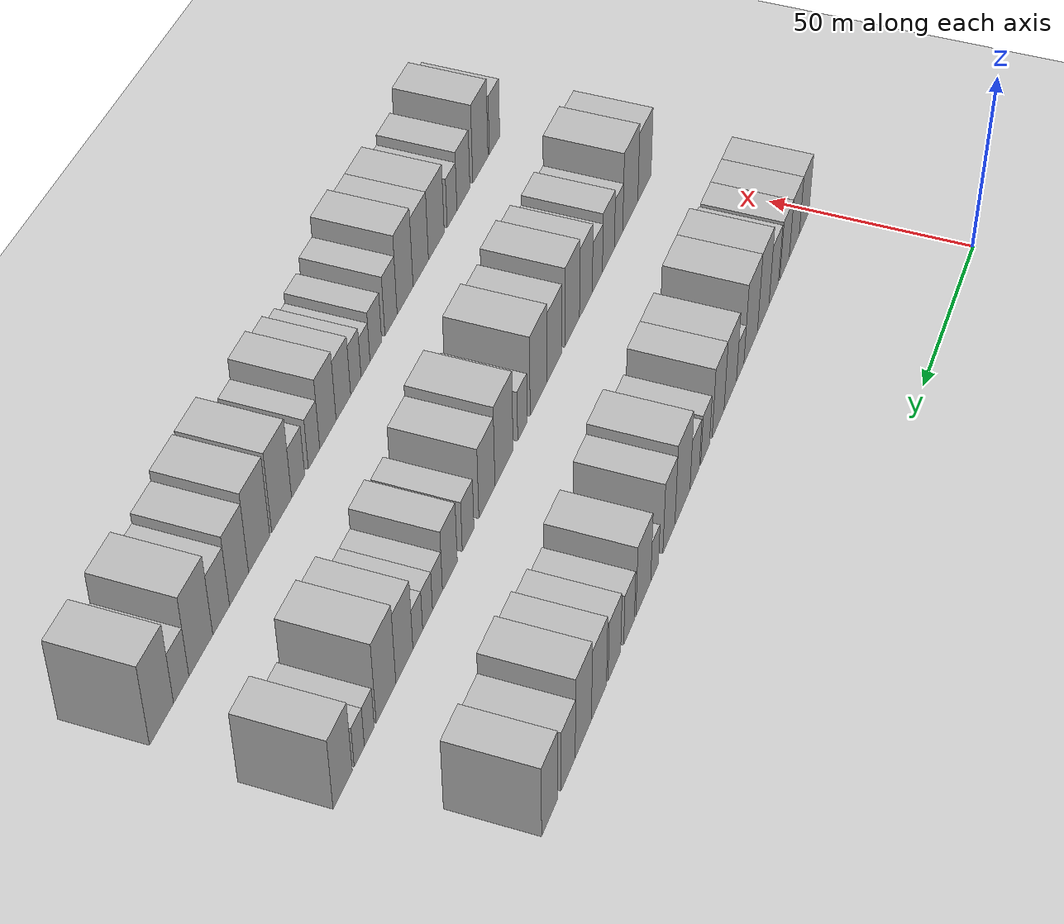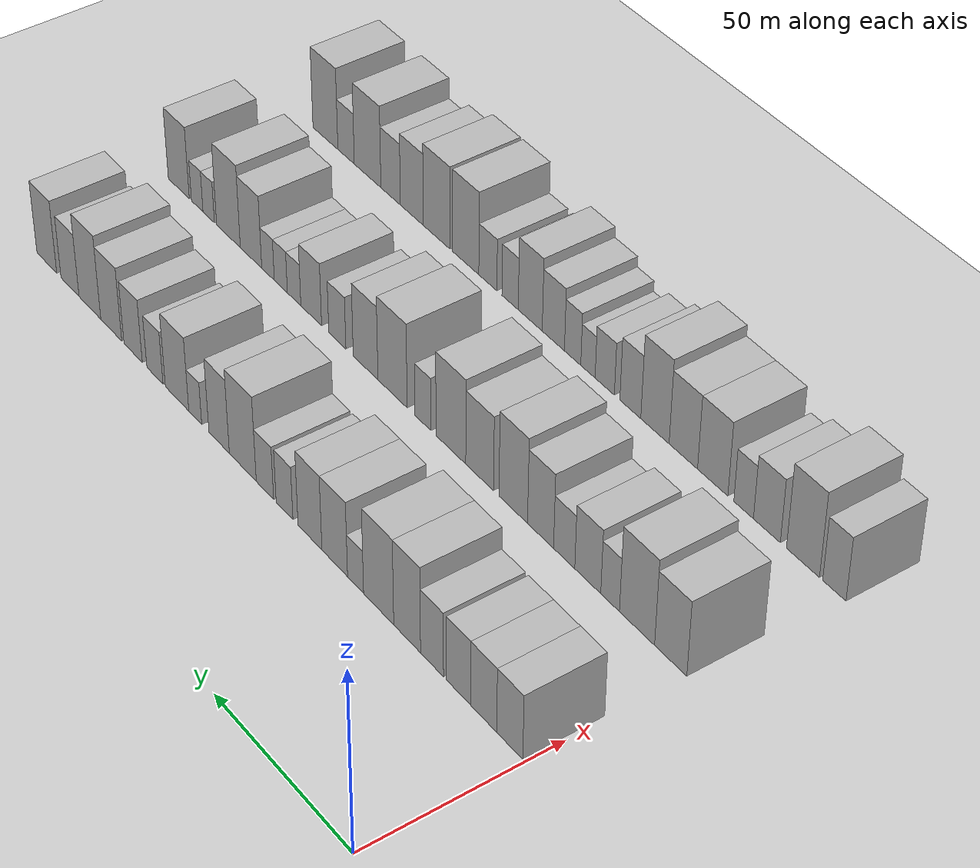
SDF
<sdf version="1.6">
 <world name="default">
  <include>
   <name>ground_plane_2</name>
   <uri>model://HANNAS_ground_plane</uri>
   <pose>100 0 0  0 0 0</pose>
  </include>
  <model name="building_42">
   <static>1</static>
   <pose>50.0000 5.1504 0 0.000000 0.000000 0.000000</pose>
   <link name="link">
    <pose>0 0 9.00 0 0 0</pose>
    <collision name="collision"><geometry><box><size>20.0000 8.7349 18.0000</size></box></geometry></collision>
    <visual name="visual">
     <cast_shadows>0</cast_shadows>
     <geometry><box><size>20.0000 8.7349 18.0000</size></box></geometry>
     <material>
      <script>
       <uri>model://HANNAS_wall/materials/scripts</uri>
       <uri>model://HANNAS_wall/materials/textures</uri>
       <name>vrc/HANNAS_wall</name>
      </script>
     </material>
    </visual>
   </link>
  </model>
  <model name="building_43">
   <static>1</static>
   <pose>50.0000 13.9626 0 0.000000 0.000000 0.000000</pose>
   <link name="link">
    <pose>0 0 9.00 0 0 0</pose>
    <collision name="collision"><geometry><box><size>20.0000 8.8895 18.0000</size></box></geometry></collision>
    <visual name="visual">
     <cast_shadows>0</cast_shadows>
     <geometry><box><size>20.0000 8.8895 18.0000</size></box></geometry>
     <material>
      <script>
       <uri>model://HANNAS_wall/materials/scripts</uri>
       <uri>model://HANNAS_wall/materials/textures</uri>
       <name>vrc/HANNAS_wall</name>
      </script>
     </material>
    </visual>
   </link>
  </model>
  <model name="building_44">
   <static>1</static>
   <pose>50.0000 22.5887 0 0.000000 0.000000 0.000000</pose>
   <link name="link">
    <pose>0 0 9.00 0 0 0</pose>
    <collision name="collision"><geometry><box><size>20.0000 8.3627 18.0000</size></box></geometry></collision>
    <visual name="visual">
     <cast_shadows>0</cast_shadows>
     <geometry><box><size>20.0000 8.3627 18.0000</size></box></geometry>
     <material>
      <script>
       <uri>model://HANNAS_wall/materials/scripts</uri>
       <uri>model://HANNAS_wall/materials/textures</uri>
       <name>vrc/HANNAS_wall</name>
      </script>
     </material>
    </visual>
   </link>
  </model>
  <model name="building_45">
   <static>1</static>
   <pose>50.0000 31.8233 0 0.000000 0.000000 0.000000</pose>
   <link name="link">
    <pose>0 0 9.00 0 0 0</pose>
    <collision name="collision"><geometry><box><size>20.0000 8.1066 18.0000</size></box></geometry></collision>
    <visual name="visual">
     <cast_shadows>0</cast_shadows>
     <geometry><box><size>20.0000 8.1066 18.0000</size></box></geometry>
     <material>
      <script>
       <uri>model://HANNAS_wall/materials/scripts</uri>
       <uri>model://HANNAS_wall/materials/textures</uri>
       <name>vrc/HANNAS_wall</name>
      </script>
     </material>
    </visual>
   </link>
  </model>
  <model name="building_46">
   <static>1</static>
   <pose>50.0000 40.6943 0 0.000000 0.000000 0.000000</pose>
   <link name="link">
    <pose>0 0 12.00 0 0 0</pose>
    <collision name="collision"><geometry><box><size>20.0000 9.6353 24.0000</size></box></geometry></collision>
    <visual name="visual">
     <cast_shadows>0</cast_shadows>
     <geometry><box><size>20.0000 9.6353 24.0000</size></box></geometry>
     <material>
      <script>
       <uri>model://HANNAS_wall/materials/scripts</uri>
       <uri>model://HANNAS_wall/materials/textures</uri>
       <name>vrc/HANNAS_wall</name>
      </script>
     </material>
    </visual>
   </link>
  </model>
  <model name="building_47">
   <static>1</static>
   <pose>50.0000 51.0428 0 0.000000 0.000000 0.000000</pose>
   <link name="link">
    <pose>0 0 12.00 0 0 0</pose>
    <collision name="collision"><geometry><box><size>20.0000 11.0618 24.0000</size></box></geometry></collision>
    <visual name="visual">
     <cast_shadows>0</cast_shadows>
     <geometry><box><size>20.0000 11.0618 24.0000</size></box></geometry>
     <material>
      <script>
       <uri>model://HANNAS_wall/materials/scripts</uri>
       <uri>model://HANNAS_wall/materials/textures</uri>
       <name>vrc/HANNAS_wall</name>
      </script>
     </material>
    </visual>
   </link>
  </model>
  <model name="building_48">
   <static>1</static>
   <pose>50.0000 59.5618 0 0.000000 0.000000 0.000000</pose>
   <link name="link">
    <pose>0 0 6.00 0 0 0</pose>
    <collision name="collision"><geometry><box><size>20.0000 5.9762 12.0000</size></box></geometry></collision>
    <visual name="visual">
     <cast_shadows>0</cast_shadows>
     <geometry><box><size>20.0000 5.9762 12.0000</size></box></geometry>
     <material>
      <script>
       <uri>model://HANNAS_wall/materials/scripts</uri>
       <uri>model://HANNAS_wall/materials/textures</uri>
       <name>vrc/HANNAS_wall</name>
      </script>
     </material>
    </visual>
   </link>
  </model>
  <model name="building_49">
   <static>1</static>
   <pose>50.0000 67.4101 0 0.000000 0.000000 0.000000</pose>
   <link name="link">
    <pose>0 0 10.50 0 0 0</pose>
    <collision name="collision"><geometry><box><size>20.0000 9.7205 21.0000</size></box></geometry></collision>
    <visual name="visual">
     <cast_shadows>0</cast_shadows>
     <geometry><box><size>20.0000 9.7205 21.0000</size></box></geometry>
     <material>
      <script>
       <uri>model://HANNAS_wall/materials/scripts</uri>
       <uri>model://HANNAS_wall/materials/textures</uri>
       <name>vrc/HANNAS_wall</name>
      </script>
     </material>
    </visual>
   </link>
  </model>
  <model name="building_50">
   <static>1</static>
   <pose>50.0000 76.8824 0 0.000000 0.000000 0.000000</pose>
   <link name="link">
    <pose>0 0 10.50 0 0 0</pose>
    <collision name="collision"><geometry><box><size>20.0000 9.2241 21.0000</size></box></geometry></collision>
    <visual name="visual">
     <cast_shadows>0</cast_shadows>
     <geometry><box><size>20.0000 9.2241 21.0000</size></box></geometry>
     <material>
      <script>
       <uri>model://HANNAS_wall/materials/scripts</uri>
       <uri>model://HANNAS_wall/materials/textures</uri>
       <name>vrc/HANNAS_wall</name>
      </script>
     </material>
    </visual>
   </link>
  </model>
  <model name="building_51">
   <static>1</static>
   <pose>50.0000 86.7952 0 0.000000 0.000000 0.000000</pose>
   <link name="link">
    <pose>0 0 7.50 0 0 0</pose>
    <collision name="collision"><geometry><box><size>20.0000 6.6013 15.0000</size></box></geometry></collision>
    <visual name="visual">
     <cast_shadows>0</cast_shadows>
     <geometry><box><size>20.0000 6.6013 15.0000</size></box></geometry>
     <material>
      <script>
       <uri>model://HANNAS_wall/materials/scripts</uri>
       <uri>model://HANNAS_wall/materials/textures</uri>
       <name>vrc/HANNAS_wall</name>
      </script>
     </material>
    </visual>
   </link>
  </model>
  <model name="building_52">
   <static>1</static>
   <pose>50.0000 94.5593 0 0.000000 0.000000 0.000000</pose>
   <link name="link">
    <pose>0 0 7.50 0 0 0</pose>
    <collision name="collision"><geometry><box><size>20.0000 6.9269 15.0000</size></box></geometry></collision>
    <visual name="visual">
     <cast_shadows>0</cast_shadows>
     <geometry><box><size>20.0000 6.9269 15.0000</size></box></geometry>
     <material>
      <script>
       <uri>model://HANNAS_wall/materials/scripts</uri>
       <uri>model://HANNAS_wall/materials/textures</uri>
       <name>vrc/HANNAS_wall</name>
      </script>
     </material>
    </visual>
   </link>
  </model>
  <model name="building_53">
   <static>1</static>
   <pose>50.0000 103.4918 0 0.000000 0.000000 0.000000</pose>
   <link name="link">
    <pose>0 0 12.00 0 0 0</pose>
    <collision name="collision"><geometry><box><size>20.0000 10.9381 24.0000</size></box></geometry></collision>
    <visual name="visual">
     <cast_shadows>0</cast_shadows>
     <geometry><box><size>20.0000 10.9381 24.0000</size></box></geometry>
     <material>
      <script>
       <uri>model://HANNAS_wall/materials/scripts</uri>
       <uri>model://HANNAS_wall/materials/textures</uri>
       <name>vrc/HANNAS_wall</name>
      </script>
     </material>
    </visual>
   </link>
  </model>
  <model name="building_54">
   <static>1</static>
   <pose>50.0000 113.1980 0 0.000000 0.000000 0.000000</pose>
   <link name="link">
    <pose>0 0 10.50 0 0 0</pose>
    <collision name="collision"><geometry><box><size>20.0000 8.4742 21.0000</size></box></geometry></collision>
    <visual name="visual">
     <cast_shadows>0</cast_shadows>
     <geometry><box><size>20.0000 8.4742 21.0000</size></box></geometry>
     <material>
      <script>
       <uri>model://HANNAS_wall/materials/scripts</uri>
       <uri>model://HANNAS_wall/materials/textures</uri>
       <name>vrc/HANNAS_wall</name>
      </script>
     </material>
    </visual>
   </link>
  </model>
  <model name="building_55">
   <static>1</static>
   <pose>50.0000 123.1543 0 0.000000 0.000000 0.000000</pose>
   <link name="link">
    <pose>0 0 6.00 0 0 0</pose>
    <collision name="collision"><geometry><box><size>20.0000 5.4384 12.0000</size></box></geometry></collision>
    <visual name="visual">
     <cast_shadows>0</cast_shadows>
     <geometry><box><size>20.0000 5.4384 12.0000</size></box></geometry>
     <material>
      <script>
       <uri>model://HANNAS_wall/materials/scripts</uri>
       <uri>model://HANNAS_wall/materials/textures</uri>
       <name>vrc/HANNAS_wall</name>
      </script>
     </material>
    </visual>
   </link>
  </model>
  <model name="building_56">
   <static>1</static>
   <pose>50.0000 130.8927 0 0.000000 0.000000 0.000000</pose>
   <link name="link">
    <pose>0 0 10.50 0 0 0</pose>
    <collision name="collision"><geometry><box><size>20.0000 10.0384 21.0000</size></box></geometry></collision>
    <visual name="visual">
     <cast_shadows>0</cast_shadows>
     <geometry><box><size>20.0000 10.0384 21.0000</size></box></geometry>
     <material>
      <script>
       <uri>model://HANNAS_wall/materials/scripts</uri>
       <uri>model://HANNAS_wall/materials/textures</uri>
       <name>vrc/HANNAS_wall</name>
      </script>
     </material>
    </visual>
   </link>
  </model>
  <model name="building_57">
   <static>1</static>
   <pose>50.0000 140.4306 0 0.000000 0.000000 0.000000</pose>
   <link name="link">
    <pose>0 0 7.50 0 0 0</pose>
    <collision name="collision"><geometry><box><size>20.0000 7.0374 15.0000</size></box></geometry></collision>
    <visual name="visual">
     <cast_shadows>0</cast_shadows>
     <geometry><box><size>20.0000 7.0374 15.0000</size></box></geometry>
     <material>
      <script>
       <uri>model://HANNAS_wall/materials/scripts</uri>
       <uri>model://HANNAS_wall/materials/textures</uri>
       <name>vrc/HANNAS_wall</name>
      </script>
     </material>
    </visual>
   </link>
  </model>
  <model name="building_58">
   <static>1</static>
   <pose>50.0000 150.0106 0 0.000000 0.000000 0.000000</pose>
   <link name="link">
    <pose>0 0 9.00 0 0 0</pose>
    <collision name="collision"><geometry><box><size>20.0000 8.1225 18.0000</size></box></geometry></collision>
    <visual name="visual">
     <cast_shadows>0</cast_shadows>
     <geometry><box><size>20.0000 8.1225 18.0000</size></box></geometry>
     <material>
      <script>
       <uri>model://HANNAS_wall/materials/scripts</uri>
       <uri>model://HANNAS_wall/materials/textures</uri>
       <name>vrc/HANNAS_wall</name>
      </script>
     </material>
    </visual>
   </link>
  </model>
  <model name="building_59">
   <static>1</static>
   <pose>50.0000 159.7908 0 0.000000 0.000000 0.000000</pose>
   <link name="link">
    <pose>0 0 10.50 0 0 0</pose>
    <collision name="collision"><geometry><box><size>20.0000 9.4380 21.0000</size></box></geometry></collision>
    <visual name="visual">
     <cast_shadows>0</cast_shadows>
     <geometry><box><size>20.0000 9.4380 21.0000</size></box></geometry>
     <material>
      <script>
       <uri>model://HANNAS_wall/materials/scripts</uri>
       <uri>model://HANNAS_wall/materials/textures</uri>
       <name>vrc/HANNAS_wall</name>
      </script>
     </material>
    </visual>
   </link>
  </model>
  <model name="building_60">
   <static>1</static>
   <pose>50.0000 169.4967 0 0.000000 0.000000 0.000000</pose>
   <link name="link">
    <pose>0 0 12.00 0 0 0</pose>
    <collision name="collision"><geometry><box><size>20.0000 9.9737 24.0000</size></box></geometry></collision>
    <visual name="visual">
     <cast_shadows>0</cast_shadows>
     <geometry><box><size>20.0000 9.9737 24.0000</size></box></geometry>
     <material>
      <script>
       <uri>model://HANNAS_wall/materials/scripts</uri>
       <uri>model://HANNAS_wall/materials/textures</uri>
       <name>vrc/HANNAS_wall</name>
      </script>
     </material>
    </visual>
   </link>
  </model>
  <model name="building_61">
   <static>1</static>
   <pose>50.0000 178.6921 0 0.000000 0.000000 0.000000</pose>
   <link name="link">
    <pose>0 0 9.00 0 0 0</pose>
    <collision name="collision"><geometry><box><size>20.0000 8.4172 18.0000</size></box></geometry></collision>
    <visual name="visual">
     <cast_shadows>0</cast_shadows>
     <geometry><box><size>20.0000 8.4172 18.0000</size></box></geometry>
     <material>
      <script>
       <uri>model://HANNAS_wall/materials/scripts</uri>
       <uri>model://HANNAS_wall/materials/textures</uri>
       <name>vrc/HANNAS_wall</name>
      </script>
     </material>
    </visual>
   </link>
  </model>
  <model name="building_62">
   <static>1</static>
   <pose>50.0000 189.6006 0 0.000000 0.000000 0.000000</pose>
   <link name="link">
    <pose>0 0 10.50 0 0 0</pose>
    <collision name="collision"><geometry><box><size>20.0000 9.3999 21.0000</size></box></geometry></collision>
    <visual name="visual">
     <cast_shadows>0</cast_shadows>
     <geometry><box><size>20.0000 9.3999 21.0000</size></box></geometry>
     <material>
      <script>
       <uri>model://HANNAS_wall/materials/scripts</uri>
       <uri>model://HANNAS_wall/materials/textures</uri>
       <name>vrc/HANNAS_wall</name>
      </script>
     </material>
    </visual>
   </link>
  </model>
  <model name="building_129">
   <static>1</static>
   <pose>90.0000 5.2081 0 0.000000 0.000000 0.000000</pose>
   <link name="link">
    <pose>0 0 10.50 0 0 0</pose>
    <collision name="collision"><geometry><box><size>20.0000 10.4973 21.0000</size></box></geometry></collision>
    <visual name="visual">
     <cast_shadows>0</cast_shadows>
     <geometry><box><size>20.0000 10.4973 21.0000</size></box></geometry>
     <material>
      <script>
       <uri>model://HANNAS_wall/materials/scripts</uri>
       <uri>model://HANNAS_wall/materials/textures</uri>
       <name>vrc/HANNAS_wall</name>
      </script>
     </material>
    </visual>
   </link>
  </model>
  <model name="building_130">
   <static>1</static>
   <pose>90.0000 16.3154 0 0.000000 0.000000 0.000000</pose>
   <link name="link">
    <pose>0 0 12.00 0 0 0</pose>
    <collision name="collision"><geometry><box><size>20.0000 11.7172 24.0000</size></box></geometry></collision>
    <visual name="visual">
     <cast_shadows>0</cast_shadows>
     <geometry><box><size>20.0000 11.7172 24.0000</size></box></geometry>
     <material>
      <script>
       <uri>model://HANNAS_wall/materials/scripts</uri>
       <uri>model://HANNAS_wall/materials/textures</uri>
       <name>vrc/HANNAS_wall</name>
      </script>
     </material>
    </visual>
   </link>
  </model>
  <model name="building_131">
   <static>1</static>
   <pose>90.0000 25.3400 0 0.000000 0.000000 0.000000</pose>
   <link name="link">
    <pose>0 0 7.50 0 0 0</pose>
    <collision name="collision"><geometry><box><size>20.0000 6.3320 15.0000</size></box></geometry></collision>
    <visual name="visual">
     <cast_shadows>0</cast_shadows>
     <geometry><box><size>20.0000 6.3320 15.0000</size></box></geometry>
     <material>
      <script>
       <uri>model://HANNAS_wall/materials/scripts</uri>
       <uri>model://HANNAS_wall/materials/textures</uri>
       <name>vrc/HANNAS_wall</name>
      </script>
     </material>
    </visual>
   </link>
  </model>
  <model name="building_132">
   <static>1</static>
   <pose>90.0000 32.9797 0 0.000000 0.000000 0.000000</pose>
   <link name="link">
    <pose>0 0 9.00 0 0 0</pose>
    <collision name="collision"><geometry><box><size>20.0000 8.9473 18.0000</size></box></geometry></collision>
    <visual name="visual">
     <cast_shadows>0</cast_shadows>
     <geometry><box><size>20.0000 8.9473 18.0000</size></box></geometry>
     <material>
      <script>
       <uri>model://HANNAS_wall/materials/scripts</uri>
       <uri>model://HANNAS_wall/materials/textures</uri>
       <name>vrc/HANNAS_wall</name>
      </script>
     </material>
    </visual>
   </link>
  </model>
  <model name="building_133">
   <static>1</static>
   <pose>90.0000 41.1672 0 0.000000 0.000000 0.000000</pose>
   <link name="link">
    <pose>0 0 7.50 0 0 0</pose>
    <collision name="collision"><geometry><box><size>20.0000 7.4278 15.0000</size></box></geometry></collision>
    <visual name="visual">
     <cast_shadows>0</cast_shadows>
     <geometry><box><size>20.0000 7.4278 15.0000</size></box></geometry>
     <material>
      <script>
       <uri>model://HANNAS_wall/materials/scripts</uri>
       <uri>model://HANNAS_wall/materials/textures</uri>
       <name>vrc/HANNAS_wall</name>
      </script>
     </material>
    </visual>
   </link>
  </model>
  <model name="building_134">
   <static>1</static>
   <pose>90.0000 49.5160 0 0.000000 0.000000 0.000000</pose>
   <link name="link">
    <pose>0 0 10.50 0 0 0</pose>
    <collision name="collision"><geometry><box><size>20.0000 9.2696 21.0000</size></box></geometry></collision>
    <visual name="visual">
     <cast_shadows>0</cast_shadows>
     <geometry><box><size>20.0000 9.2696 21.0000</size></box></geometry>
     <material>
      <script>
       <uri>model://HANNAS_wall/materials/scripts</uri>
       <uri>model://HANNAS_wall/materials/textures</uri>
       <name>vrc/HANNAS_wall</name>
      </script>
     </material>
    </visual>
   </link>
  </model>
  <model name="building_135">
   <static>1</static>
   <pose>90.0000 59.3234 0 0.000000 0.000000 0.000000</pose>
   <link name="link">
    <pose>0 0 12.00 0 0 0</pose>
    <collision name="collision"><geometry><box><size>20.0000 10.3452 24.0000</size></box></geometry></collision>
    <visual name="visual">
     <cast_shadows>0</cast_shadows>
     <geometry><box><size>20.0000 10.3452 24.0000</size></box></geometry>
     <material>
      <script>
       <uri>model://HANNAS_wall/materials/scripts</uri>
       <uri>model://HANNAS_wall/materials/textures</uri>
       <name>vrc/HANNAS_wall</name>
      </script>
     </material>
    </visual>
   </link>
  </model>
  <model name="building_136">
   <static>1</static>
   <pose>90.0000 71.6429 0 0.000000 0.000000 0.000000</pose>
   <link name="link">
    <pose>0 0 10.50 0 0 0</pose>
    <collision name="collision"><geometry><box><size>20.0000 10.2939 21.0000</size></box></geometry></collision>
    <visual name="visual">
     <cast_shadows>0</cast_shadows>
     <geometry><box><size>20.0000 10.2939 21.0000</size></box></geometry>
     <material>
      <script>
       <uri>model://HANNAS_wall/materials/scripts</uri>
       <uri>model://HANNAS_wall/materials/textures</uri>
       <name>vrc/HANNAS_wall</name>
      </script>
     </material>
    </visual>
   </link>
  </model>
  <model name="building_137">
   <static>1</static>
   <pose>90.0000 82.4135 0 0.000000 0.000000 0.000000</pose>
   <link name="link">
    <pose>0 0 12.00 0 0 0</pose>
    <collision name="collision"><geometry><box><size>20.0000 11.2472 24.0000</size></box></geometry></collision>
    <visual name="visual">
     <cast_shadows>0</cast_shadows>
     <geometry><box><size>20.0000 11.2472 24.0000</size></box></geometry>
     <material>
      <script>
       <uri>model://HANNAS_wall/materials/scripts</uri>
       <uri>model://HANNAS_wall/materials/textures</uri>
       <name>vrc/HANNAS_wall</name>
      </script>
     </material>
    </visual>
   </link>
  </model>
  <model name="building_138">
   <static>1</static>
   <pose>90.0000 93.1206 0 0.000000 0.000000 0.000000</pose>
   <link name="link">
    <pose>0 0 7.50 0 0 0</pose>
    <collision name="collision"><geometry><box><size>20.0000 6.1670 15.0000</size></box></geometry></collision>
    <visual name="visual">
     <cast_shadows>0</cast_shadows>
     <geometry><box><size>20.0000 6.1670 15.0000</size></box></geometry>
     <material>
      <script>
       <uri>model://HANNAS_wall/materials/scripts</uri>
       <uri>model://HANNAS_wall/materials/textures</uri>
       <name>vrc/HANNAS_wall</name>
      </script>
     </material>
    </visual>
   </link>
  </model>
  <model name="building_139">
   <static>1</static>
   <pose>90.0000 104.9652 0 0.000000 0.000000 0.000000</pose>
   <link name="link">
    <pose>0 0 12.00 0 0 0</pose>
    <collision name="collision"><geometry><box><size>20.0000 11.5222 24.0000</size></box></geometry></collision>
    <visual name="visual">
     <cast_shadows>0</cast_shadows>
     <geometry><box><size>20.0000 11.5222 24.0000</size></box></geometry>
     <material>
      <script>
       <uri>model://HANNAS_wall/materials/scripts</uri>
       <uri>model://HANNAS_wall/materials/textures</uri>
       <name>vrc/HANNAS_wall</name>
      </script>
     </material>
    </visual>
   </link>
  </model>
  <model name="building_140">
   <static>1</static>
   <pose>90.0000 115.7060 0 0.000000 0.000000 0.000000</pose>
   <link name="link">
    <pose>0 0 10.50 0 0 0</pose>
    <collision name="collision"><geometry><box><size>20.0000 9.9594 21.0000</size></box></geometry></collision>
    <visual name="visual">
     <cast_shadows>0</cast_shadows>
     <geometry><box><size>20.0000 9.9594 21.0000</size></box></geometry>
     <material>
      <script>
       <uri>model://HANNAS_wall/materials/scripts</uri>
       <uri>model://HANNAS_wall/materials/textures</uri>
       <name>vrc/HANNAS_wall</name>
      </script>
     </material>
    </visual>
   </link>
  </model>
  <model name="building_141">
   <static>1</static>
   <pose>90.0000 127.1951 0 0.000000 0.000000 0.000000</pose>
   <link name="link">
    <pose>0 0 7.50 0 0 0</pose>
    <collision name="collision"><geometry><box><size>20.0000 7.0189 15.0000</size></box></geometry></collision>
    <visual name="visual">
     <cast_shadows>0</cast_shadows>
     <geometry><box><size>20.0000 7.0189 15.0000</size></box></geometry>
     <material>
      <script>
       <uri>model://HANNAS_wall/materials/scripts</uri>
       <uri>model://HANNAS_wall/materials/textures</uri>
       <name>vrc/HANNAS_wall</name>
      </script>
     </material>
    </visual>
   </link>
  </model>
  <model name="building_142">
   <static>1</static>
   <pose>90.0000 138.0527 0 0.000000 0.000000 0.000000</pose>
   <link name="link">
    <pose>0 0 9.00 0 0 0</pose>
    <collision name="collision"><geometry><box><size>20.0000 8.6962 18.0000</size></box></geometry></collision>
    <visual name="visual">
     <cast_shadows>0</cast_shadows>
     <geometry><box><size>20.0000 8.6962 18.0000</size></box></geometry>
     <material>
      <script>
       <uri>model://HANNAS_wall/materials/scripts</uri>
       <uri>model://HANNAS_wall/materials/textures</uri>
       <name>vrc/HANNAS_wall</name>
      </script>
     </material>
    </visual>
   </link>
  </model>
  <model name="building_143">
   <static>1</static>
   <pose>90.0000 145.2676 0 0.000000 0.000000 0.000000</pose>
   <link name="link">
    <pose>0 0 6.00 0 0 0</pose>
    <collision name="collision"><geometry><box><size>20.0000 5.7335 12.0000</size></box></geometry></collision>
    <visual name="visual">
     <cast_shadows>0</cast_shadows>
     <geometry><box><size>20.0000 5.7335 12.0000</size></box></geometry>
     <material>
      <script>
       <uri>model://HANNAS_wall/materials/scripts</uri>
       <uri>model://HANNAS_wall/materials/textures</uri>
       <name>vrc/HANNAS_wall</name>
      </script>
     </material>
    </visual>
   </link>
  </model>
  <model name="building_144">
   <static>1</static>
   <pose>90.0000 150.9372 0 0.000000 0.000000 0.000000</pose>
   <link name="link">
    <pose>0 0 6.00 0 0 0</pose>
    <collision name="collision"><geometry><box><size>20.0000 5.6057 12.0000</size></box></geometry></collision>
    <visual name="visual">
     <cast_shadows>0</cast_shadows>
     <geometry><box><size>20.0000 5.6057 12.0000</size></box></geometry>
     <material>
      <script>
       <uri>model://HANNAS_wall/materials/scripts</uri>
       <uri>model://HANNAS_wall/materials/textures</uri>
       <name>vrc/HANNAS_wall</name>
      </script>
     </material>
    </visual>
   </link>
  </model>
  <model name="building_145">
   <static>1</static>
   <pose>90.0000 156.4597 0 0.000000 0.000000 0.000000</pose>
   <link name="link">
    <pose>0 0 6.00 0 0 0</pose>
    <collision name="collision"><geometry><box><size>20.0000 5.4393 12.0000</size></box></geometry></collision>
    <visual name="visual">
     <cast_shadows>0</cast_shadows>
     <geometry><box><size>20.0000 5.4393 12.0000</size></box></geometry>
     <material>
      <script>
       <uri>model://HANNAS_wall/materials/scripts</uri>
       <uri>model://HANNAS_wall/materials/textures</uri>
       <name>vrc/HANNAS_wall</name>
      </script>
     </material>
    </visual>
   </link>
  </model>
  <model name="building_146">
   <static>1</static>
   <pose>90.0000 163.8768 0 0.000000 0.000000 0.000000</pose>
   <link name="link">
    <pose>0 0 10.50 0 0 0</pose>
    <collision name="collision"><geometry><box><size>20.0000 9.3950 21.0000</size></box></geometry></collision>
    <visual name="visual">
     <cast_shadows>0</cast_shadows>
     <geometry><box><size>20.0000 9.3950 21.0000</size></box></geometry>
     <material>
      <script>
       <uri>model://HANNAS_wall/materials/scripts</uri>
       <uri>model://HANNAS_wall/materials/textures</uri>
       <name>vrc/HANNAS_wall</name>
      </script>
     </material>
    </visual>
   </link>
  </model>
  <model name="building_147">
   <static>1</static>
   <pose>90.0000 173.8678 0 0.000000 0.000000 0.000000</pose>
   <link name="link">
    <pose>0 0 12.00 0 0 0</pose>
    <collision name="collision"><geometry><box><size>20.0000 10.5870 24.0000</size></box></geometry></collision>
    <visual name="visual">
     <cast_shadows>0</cast_shadows>
     <geometry><box><size>20.0000 10.5870 24.0000</size></box></geometry>
     <material>
      <script>
       <uri>model://HANNAS_wall/materials/scripts</uri>
       <uri>model://HANNAS_wall/materials/textures</uri>
       <name>vrc/HANNAS_wall</name>
      </script>
     </material>
    </visual>
   </link>
  </model>
  <model name="building_148">
   <static>1</static>
   <pose>90.0000 182.7572 0 0.000000 0.000000 0.000000</pose>
   <link name="link">
    <pose>0 0 6.00 0 0 0</pose>
    <collision name="collision"><geometry><box><size>20.0000 5.1918 12.0000</size></box></geometry></collision>
    <visual name="visual">
     <cast_shadows>0</cast_shadows>
     <geometry><box><size>20.0000 5.1918 12.0000</size></box></geometry>
     <material>
      <script>
       <uri>model://HANNAS_wall/materials/scripts</uri>
       <uri>model://HANNAS_wall/materials/textures</uri>
       <name>vrc/HANNAS_wall</name>
      </script>
     </material>
    </visual>
   </link>
  </model>
  <model name="building_149">
   <static>1</static>
   <pose>90.0000 187.9911 0 0.000000 0.000000 0.000000</pose>
   <link name="link">
    <pose>0 0 6.00 0 0 0</pose>
    <collision name="collision"><geometry><box><size>20.0000 5.2759 12.0000</size></box></geometry></collision>
    <visual name="visual">
     <cast_shadows>0</cast_shadows>
     <geometry><box><size>20.0000 5.2759 12.0000</size></box></geometry>
     <material>
      <script>
       <uri>model://HANNAS_wall/materials/scripts</uri>
       <uri>model://HANNAS_wall/materials/textures</uri>
       <name>vrc/HANNAS_wall</name>
      </script>
     </material>
    </visual>
   </link>
  </model>
  <model name="building_150">
   <static>1</static>
   <pose>90.0000 196.4831 0 0.000000 0.000000 0.000000</pose>
   <link name="link">
    <pose>0 0 10.50 0 0 0</pose>
    <collision name="collision"><geometry><box><size>20.0000 9.7083 21.0000</size></box></geometry></collision>
    <visual name="visual">
     <cast_shadows>0</cast_shadows>
     <geometry><box><size>20.0000 9.7083 21.0000</size></box></geometry>
     <material>
      <script>
       <uri>model://HANNAS_wall/materials/scripts</uri>
       <uri>model://HANNAS_wall/materials/textures</uri>
       <name>vrc/HANNAS_wall</name>
      </script>
     </material>
    </visual>
   </link>
  </model>
  <model name="building_216">
   <static>1</static>
   <pose>130.0000 1.5892 0 0.000000 0.000000 0.000000</pose>
   <link name="link">
    <pose>0 0 9.00 0 0 0</pose>
    <collision name="collision"><geometry><box><size>20.0000 7.4057 18.0000</size></box></geometry></collision>
    <visual name="visual">
     <cast_shadows>0</cast_shadows>
     <geometry><box><size>20.0000 7.4057 18.0000</size></box></geometry>
     <material>
      <script>
       <uri>model://HANNAS_wall/materials/scripts</uri>
       <uri>model://HANNAS_wall/materials/textures</uri>
       <name>vrc/HANNAS_wall</name>
      </script>
     </material>
    </visual>
   </link>
  </model>
  <model name="building_217">
   <static>1</static>
   <pose>130.0000 11.6293 0 0.000000 0.000000 0.000000</pose>
   <link name="link">
    <pose>0 0 12.00 0 0 0</pose>
    <collision name="collision"><geometry><box><size>20.0000 10.6746 24.0000</size></box></geometry></collision>
    <visual name="visual">
     <cast_shadows>0</cast_shadows>
     <geometry><box><size>20.0000 10.6746 24.0000</size></box></geometry>
     <material>
      <script>
       <uri>model://HANNAS_wall/materials/scripts</uri>
       <uri>model://HANNAS_wall/materials/textures</uri>
       <name>vrc/HANNAS_wall</name>
      </script>
     </material>
    </visual>
   </link>
  </model>
  <model name="building_218">
   <static>1</static>
   <pose>130.0000 23.4132 0 0.000000 0.000000 0.000000</pose>
   <link name="link">
    <pose>0 0 9.00 0 0 0</pose>
    <collision name="collision"><geometry><box><size>20.0000 8.8931 18.0000</size></box></geometry></collision>
    <visual name="visual">
     <cast_shadows>0</cast_shadows>
     <geometry><box><size>20.0000 8.8931 18.0000</size></box></geometry>
     <material>
      <script>
       <uri>model://HANNAS_wall/materials/scripts</uri>
       <uri>model://HANNAS_wall/materials/textures</uri>
       <name>vrc/HANNAS_wall</name>
      </script>
     </material>
    </visual>
   </link>
  </model>
  <model name="building_219">
   <static>1</static>
   <pose>130.0000 31.1548 0 0.000000 0.000000 0.000000</pose>
   <link name="link">
    <pose>0 0 7.50 0 0 0</pose>
    <collision name="collision"><geometry><box><size>20.0000 6.5902 15.0000</size></box></geometry></collision>
    <visual name="visual">
     <cast_shadows>0</cast_shadows>
     <geometry><box><size>20.0000 6.5902 15.0000</size></box></geometry>
     <material>
      <script>
       <uri>model://HANNAS_wall/materials/scripts</uri>
       <uri>model://HANNAS_wall/materials/textures</uri>
       <name>vrc/HANNAS_wall</name>
      </script>
     </material>
    </visual>
   </link>
  </model>
  <model name="building_220">
   <static>1</static>
   <pose>130.0000 41.6377 0 0.000000 0.000000 0.000000</pose>
   <link name="link">
    <pose>0 0 10.50 0 0 0</pose>
    <collision name="collision"><geometry><box><size>20.0000 10.3755 21.0000</size></box></geometry></collision>
    <visual name="visual">
     <cast_shadows>0</cast_shadows>
     <geometry><box><size>20.0000 10.3755 21.0000</size></box></geometry>
     <material>
      <script>
       <uri>model://HANNAS_wall/materials/scripts</uri>
       <uri>model://HANNAS_wall/materials/textures</uri>
       <name>vrc/HANNAS_wall</name>
      </script>
     </material>
    </visual>
   </link>
  </model>
  <model name="building_221">
   <static>1</static>
   <pose>130.0000 51.7915 0 0.000000 0.000000 0.000000</pose>
   <link name="link">
    <pose>0 0 10.50 0 0 0</pose>
    <collision name="collision"><geometry><box><size>20.0000 9.9322 21.0000</size></box></geometry></collision>
    <visual name="visual">
     <cast_shadows>0</cast_shadows>
     <geometry><box><size>20.0000 9.9322 21.0000</size></box></geometry>
     <material>
      <script>
       <uri>model://HANNAS_wall/materials/scripts</uri>
       <uri>model://HANNAS_wall/materials/textures</uri>
       <name>vrc/HANNAS_wall</name>
      </script>
     </material>
    </visual>
   </link>
  </model>
  <model name="building_222">
   <static>1</static>
   <pose>130.0000 61.7917 0 0.000000 0.000000 0.000000</pose>
   <link name="link">
    <pose>0 0 12.00 0 0 0</pose>
    <collision name="collision"><geometry><box><size>20.0000 10.0682 24.0000</size></box></geometry></collision>
    <visual name="visual">
     <cast_shadows>0</cast_shadows>
     <geometry><box><size>20.0000 10.0682 24.0000</size></box></geometry>
     <material>
      <script>
       <uri>model://HANNAS_wall/materials/scripts</uri>
       <uri>model://HANNAS_wall/materials/textures</uri>
       <name>vrc/HANNAS_wall</name>
      </script>
     </material>
    </visual>
   </link>
  </model>
  <model name="building_223">
   <static>1</static>
   <pose>130.0000 70.6098 0 0.000000 0.000000 0.000000</pose>
   <link name="link">
    <pose>0 0 9.00 0 0 0</pose>
    <collision name="collision"><geometry><box><size>20.0000 7.5679 18.0000</size></box></geometry></collision>
    <visual name="visual">
     <cast_shadows>0</cast_shadows>
     <geometry><box><size>20.0000 7.5679 18.0000</size></box></geometry>
     <material>
      <script>
       <uri>model://HANNAS_wall/materials/scripts</uri>
       <uri>model://HANNAS_wall/materials/textures</uri>
       <name>vrc/HANNAS_wall</name>
      </script>
     </material>
    </visual>
   </link>
  </model>
  <model name="building_224">
   <static>1</static>
   <pose>130.0000 79.9294 0 0.000000 0.000000 0.000000</pose>
   <link name="link">
    <pose>0 0 7.50 0 0 0</pose>
    <collision name="collision"><geometry><box><size>20.0000 7.0712 15.0000</size></box></geometry></collision>
    <visual name="visual">
     <cast_shadows>0</cast_shadows>
     <geometry><box><size>20.0000 7.0712 15.0000</size></box></geometry>
     <material>
      <script>
       <uri>model://HANNAS_wall/materials/scripts</uri>
       <uri>model://HANNAS_wall/materials/textures</uri>
       <name>vrc/HANNAS_wall</name>
      </script>
     </material>
    </visual>
   </link>
  </model>
  <model name="building_225">
   <static>1</static>
   <pose>130.0000 86.1307 0 0.000000 0.000000 0.000000</pose>
   <link name="link">
    <pose>0 0 6.00 0 0 0</pose>
    <collision name="collision"><geometry><box><size>20.0000 5.3316 12.0000</size></box></geometry></collision>
    <visual name="visual">
     <cast_shadows>0</cast_shadows>
     <geometry><box><size>20.0000 5.3316 12.0000</size></box></geometry>
     <material>
      <script>
       <uri>model://HANNAS_wall/materials/scripts</uri>
       <uri>model://HANNAS_wall/materials/textures</uri>
       <name>vrc/HANNAS_wall</name>
      </script>
     </material>
    </visual>
   </link>
  </model>
  <model name="building_226">
   <static>1</static>
   <pose>130.0000 91.8672 0 0.000000 0.000000 0.000000</pose>
   <link name="link">
    <pose>0 0 7.50 0 0 0</pose>
    <collision name="collision"><geometry><box><size>20.0000 6.1414 15.0000</size></box></geometry></collision>
    <visual name="visual">
     <cast_shadows>0</cast_shadows>
     <geometry><box><size>20.0000 6.1414 15.0000</size></box></geometry>
     <material>
      <script>
       <uri>model://HANNAS_wall/materials/scripts</uri>
       <uri>model://HANNAS_wall/materials/textures</uri>
       <name>vrc/HANNAS_wall</name>
      </script>
     </material>
    </visual>
   </link>
  </model>
  <model name="building_227">
   <static>1</static>
   <pose>130.0000 99.1684 0 0.000000 0.000000 0.000000</pose>
   <link name="link">
    <pose>0 0 9.00 0 0 0</pose>
    <collision name="collision"><geometry><box><size>20.0000 8.4610 18.0000</size></box></geometry></collision>
    <visual name="visual">
     <cast_shadows>0</cast_shadows>
     <geometry><box><size>20.0000 8.4610 18.0000</size></box></geometry>
     <material>
      <script>
       <uri>model://HANNAS_wall/materials/scripts</uri>
       <uri>model://HANNAS_wall/materials/textures</uri>
       <name>vrc/HANNAS_wall</name>
      </script>
     </material>
    </visual>
   </link>
  </model>
  <model name="building_228">
   <static>1</static>
   <pose>130.0000 108.0458 0 0.000000 0.000000 0.000000</pose>
   <link name="link">
    <pose>0 0 10.50 0 0 0</pose>
    <collision name="collision"><geometry><box><size>20.0000 9.2939 21.0000</size></box></geometry></collision>
    <visual name="visual">
     <cast_shadows>0</cast_shadows>
     <geometry><box><size>20.0000 9.2939 21.0000</size></box></geometry>
     <material>
      <script>
       <uri>model://HANNAS_wall/materials/scripts</uri>
       <uri>model://HANNAS_wall/materials/textures</uri>
       <name>vrc/HANNAS_wall</name>
      </script>
     </material>
    </visual>
   </link>
  </model>
  <model name="building_229">
   <static>1</static>
   <pose>130.0000 115.8889 0 0.000000 0.000000 0.000000</pose>
   <link name="link">
    <pose>0 0 7.50 0 0 0</pose>
    <collision name="collision"><geometry><box><size>20.0000 6.3923 15.0000</size></box></geometry></collision>
    <visual name="visual">
     <cast_shadows>0</cast_shadows>
     <geometry><box><size>20.0000 6.3923 15.0000</size></box></geometry>
     <material>
      <script>
       <uri>model://HANNAS_wall/materials/scripts</uri>
       <uri>model://HANNAS_wall/materials/textures</uri>
       <name>vrc/HANNAS_wall</name>
      </script>
     </material>
    </visual>
   </link>
  </model>
  <model name="building_230">
   <static>1</static>
   <pose>130.0000 124.6833 0 0.000000 0.000000 0.000000</pose>
   <link name="link">
    <pose>0 0 7.50 0 0 0</pose>
    <collision name="collision"><geometry><box><size>20.0000 7.1963 15.0000</size></box></geometry></collision>
    <visual name="visual">
     <cast_shadows>0</cast_shadows>
     <geometry><box><size>20.0000 7.1963 15.0000</size></box></geometry>
     <material>
      <script>
       <uri>model://HANNAS_wall/materials/scripts</uri>
       <uri>model://HANNAS_wall/materials/textures</uri>
       <name>vrc/HANNAS_wall</name>
      </script>
     </material>
    </visual>
   </link>
  </model>
  <model name="building_231">
   <static>1</static>
   <pose>130.0000 133.6047 0 0.000000 0.000000 0.000000</pose>
   <link name="link">
    <pose>0 0 12.00 0 0 0</pose>
    <collision name="collision"><geometry><box><size>20.0000 10.6465 24.0000</size></box></geometry></collision>
    <visual name="visual">
     <cast_shadows>0</cast_shadows>
     <geometry><box><size>20.0000 10.6465 24.0000</size></box></geometry>
     <material>
      <script>
       <uri>model://HANNAS_wall/materials/scripts</uri>
       <uri>model://HANNAS_wall/materials/textures</uri>
       <name>vrc/HANNAS_wall</name>
      </script>
     </material>
    </visual>
   </link>
  </model>
  <model name="building_232">
   <static>1</static>
   <pose>130.0000 145.4507 0 0.000000 0.000000 0.000000</pose>
   <link name="link">
    <pose>0 0 12.00 0 0 0</pose>
    <collision name="collision"><geometry><box><size>20.0000 11.0455 24.0000</size></box></geometry></collision>
    <visual name="visual">
     <cast_shadows>0</cast_shadows>
     <geometry><box><size>20.0000 11.0455 24.0000</size></box></geometry>
     <material>
      <script>
       <uri>model://HANNAS_wall/materials/scripts</uri>
       <uri>model://HANNAS_wall/materials/textures</uri>
       <name>vrc/HANNAS_wall</name>
      </script>
     </material>
    </visual>
   </link>
  </model>
  <model name="building_233">
   <static>1</static>
   <pose>130.0000 155.7995 0 0.000000 0.000000 0.000000</pose>
   <link name="link">
    <pose>0 0 10.50 0 0 0</pose>
    <collision name="collision"><geometry><box><size>20.0000 9.6520 21.0000</size></box></geometry></collision>
    <visual name="visual">
     <cast_shadows>0</cast_shadows>
     <geometry><box><size>20.0000 9.6520 21.0000</size></box></geometry>
     <material>
      <script>
       <uri>model://HANNAS_wall/materials/scripts</uri>
       <uri>model://HANNAS_wall/materials/textures</uri>
       <name>vrc/HANNAS_wall</name>
      </script>
     </material>
    </visual>
   </link>
  </model>
  <model name="building_234">
   <static>1</static>
   <pose>130.0000 164.7816 0 0.000000 0.000000 0.000000</pose>
   <link name="link">
    <pose>0 0 9.00 0 0 0</pose>
    <collision name="collision"><geometry><box><size>20.0000 8.3123 18.0000</size></box></geometry></collision>
    <visual name="visual">
     <cast_shadows>0</cast_shadows>
     <geometry><box><size>20.0000 8.3123 18.0000</size></box></geometry>
     <material>
      <script>
       <uri>model://HANNAS_wall/materials/scripts</uri>
       <uri>model://HANNAS_wall/materials/textures</uri>
       <name>vrc/HANNAS_wall</name>
      </script>
     </material>
    </visual>
   </link>
  </model>
  <model name="building_235">
   <static>1</static>
   <pose>130.0000 174.7117 0 0.000000 0.000000 0.000000</pose>
   <link name="link">
    <pose>0 0 12.00 0 0 0</pose>
    <collision name="collision"><geometry><box><size>20.0000 11.5478 24.0000</size></box></geometry></collision>
    <visual name="visual">
     <cast_shadows>0</cast_shadows>
     <geometry><box><size>20.0000 11.5478 24.0000</size></box></geometry>
     <material>
      <script>
       <uri>model://HANNAS_wall/materials/scripts</uri>
       <uri>model://HANNAS_wall/materials/textures</uri>
       <name>vrc/HANNAS_wall</name>
      </script>
     </material>
    </visual>
   </link>
  </model>
  <model name="building_236">
   <static>1</static>
   <pose>130.0000 184.1115 0 0.000000 0.000000 0.000000</pose>
   <link name="link">
    <pose>0 0 7.50 0 0 0</pose>
    <collision name="collision"><geometry><box><size>20.0000 7.2518 15.0000</size></box></geometry></collision>
    <visual name="visual">
     <cast_shadows>0</cast_shadows>
     <geometry><box><size>20.0000 7.2518 15.0000</size></box></geometry>
     <material>
      <script>
       <uri>model://HANNAS_wall/materials/scripts</uri>
       <uri>model://HANNAS_wall/materials/textures</uri>
       <name>vrc/HANNAS_wall</name>
      </script>
     </material>
    </visual>
   </link>
  </model>
  <model name="building_237">
   <static>1</static>
   <pose>130.0000 193.3113 0 0.000000 0.000000 0.000000</pose>
   <link name="link">
    <pose>0 0 12.00 0 0 0</pose>
    <collision name="collision"><geometry><box><size>20.0000 11.1480 24.0000</size></box></geometry></collision>
    <visual name="visual">
     <cast_shadows>0</cast_shadows>
     <geometry><box><size>20.0000 11.1480 24.0000</size></box></geometry>
     <material>
      <script>
       <uri>model://HANNAS_wall/materials/scripts</uri>
       <uri>model://HANNAS_wall/materials/textures</uri>
       <name>vrc/HANNAS_wall</name>
      </script>
     </material>
    </visual>
   </link>
  </model>
 </world>
</sdf>
